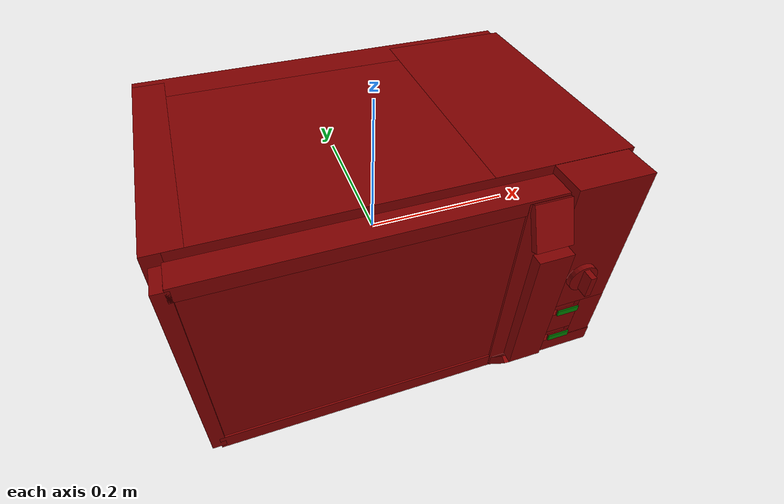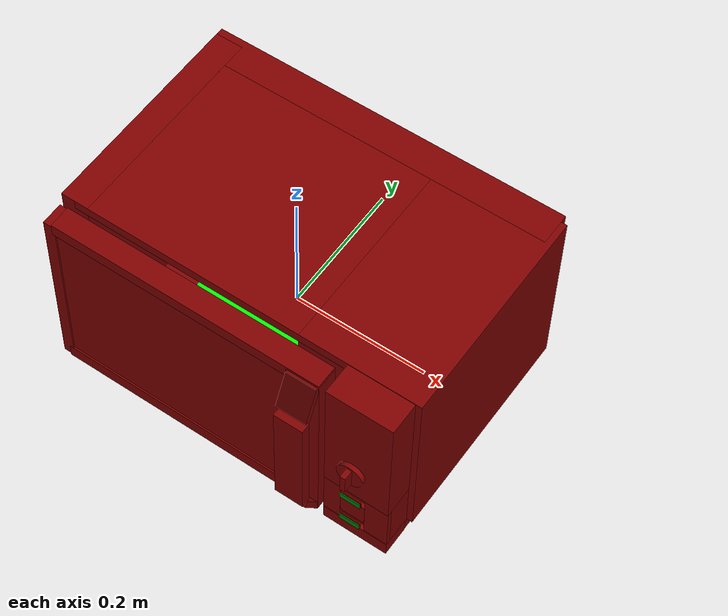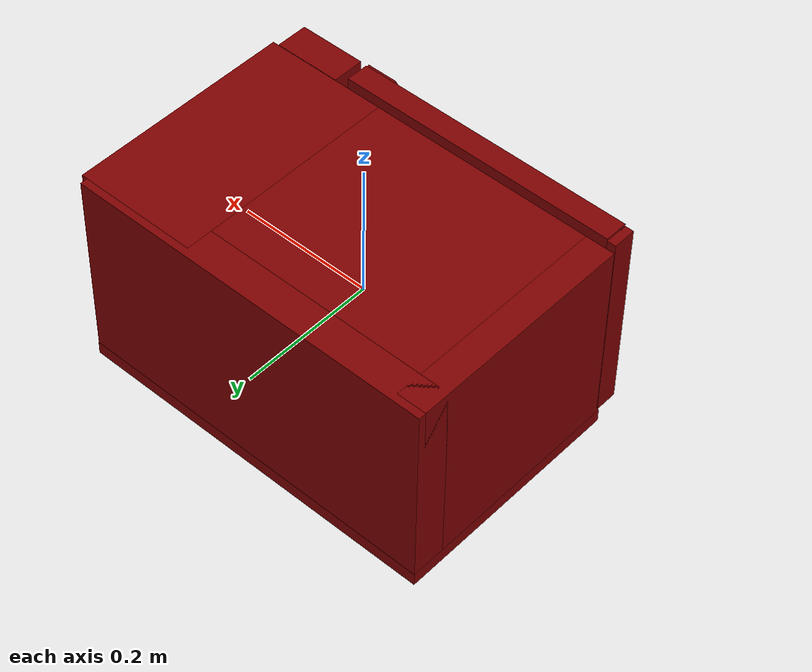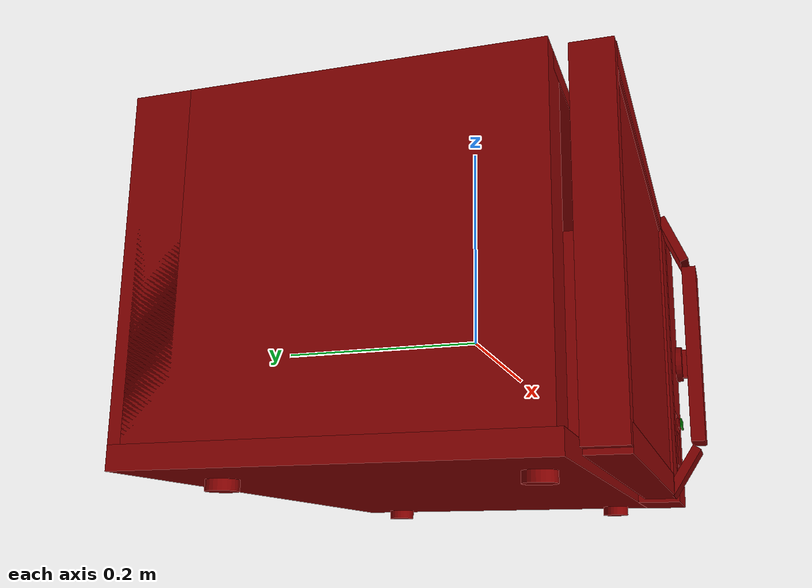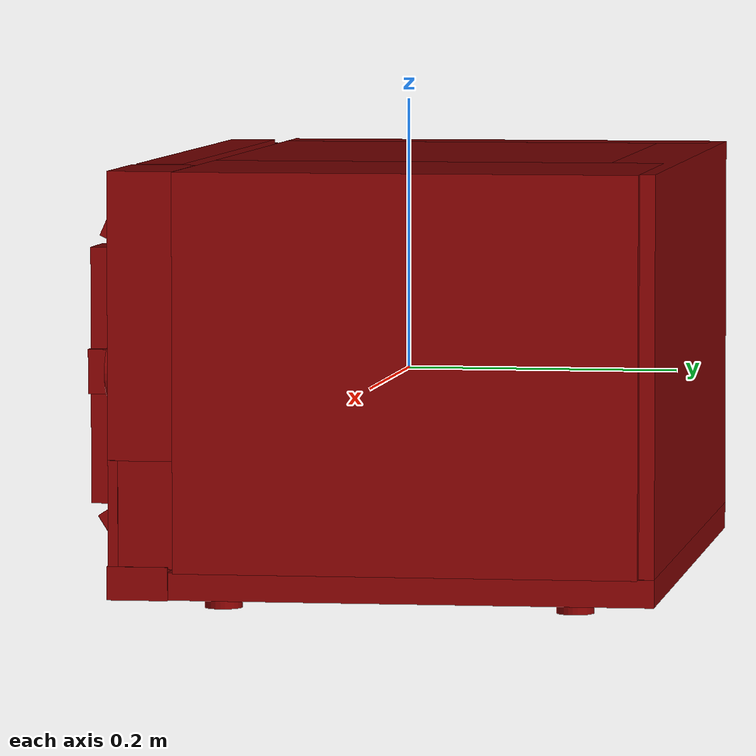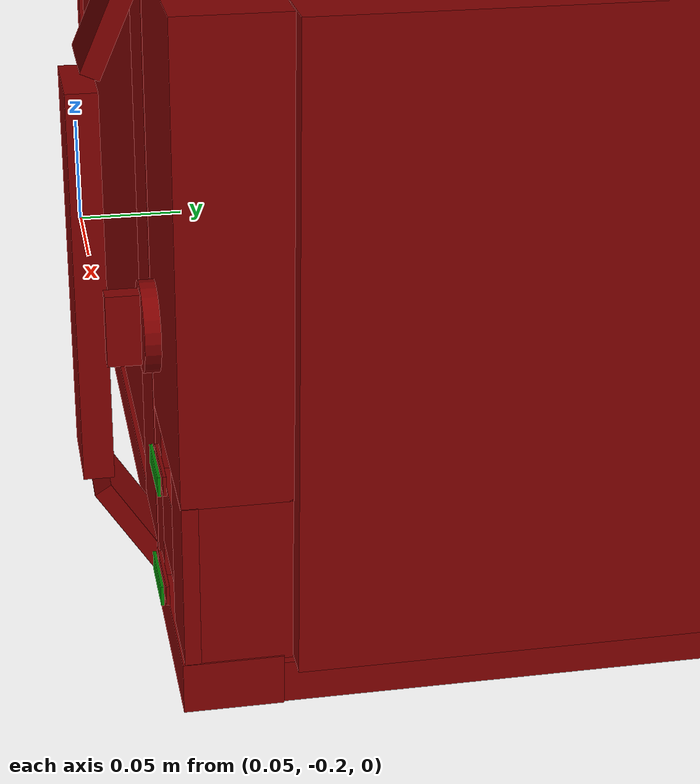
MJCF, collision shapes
<?xml version='1.0' encoding='UTF-8'?>
<mujoco model="model">
  <option timestep="0.002" gravity="0.0 0.0 -9.81"/>
  <compiler angle="radian"/>
  <asset>
    <mesh file="visuals/door.obj" name="door_vis"/>
    <mesh file="visuals/door_Clear.obj" name="door_Clear_vis"/>
    <mesh file="visuals/Body001.obj" name="Body001_vis"/>
    <mesh file="visuals/Button001.obj" name="Button001_vis"/>
    <mesh file="visuals/Button002.obj" name="Button002_vis"/>
    <mesh file="visuals/Disc001.obj" name="Disc001_vis"/>
    <mesh file="visuals/Knob001.obj" name="Knob001_vis"/>
    <texture file="visuals/T_BC001.png" name="Body001_material" type="2d"/>
    <material name="Body001_material" rgba="1 1 1 1.0" texture="Body001_material" shininess="0.4472135901451111" specular="1.5"/>
    <texture file="visuals/T_BC001.png" name="door_material" type="2d"/>
    <material name="door_material" rgba="1 1 1 1.0" texture="door_material" shininess="0.4472135901451111" specular="1"/>
    <material name="door_Clear_material" rgba="0.013285629451274872 0.013285629451274872 0.013285629451274872 0.800000011920929" shininess="0.5" specular="0.3103448502657381"/>
    <texture file="visuals/T_BC001.png" name="Button001_material" type="2d"/>
    <material name="Button001_material" rgba="1 1 1 1.0" texture="Button001_material" shininess="0.4472135901451111" specular="0.3103448502657381"/>
    <texture file="visuals/T_BC001.png" name="Button002_material" type="2d"/>
    <material name="Button002_material" rgba="1 1 1 1.0" texture="Button002_material" shininess="0.4472135901451111" specular="0.3103448502657381"/>
    <texture file="visuals/T_BC001.png" name="Disc001_material" type="2d"/>
    <material name="Disc001_material" rgba="1 1 1 1.0" texture="Disc001_material" shininess="0.4472135901451111" specular="2"/>
    <texture file="visuals/T_BC001.png" name="Knob001_material" type="2d"/>
    <material name="Knob001_material" rgba="1 1 1 1.0" texture="Knob001_material" shininess="0.4472135901451111" specular="0.3103448502657381"/>
  </asset>
  <default>
    <default class="visual">
      <geom conaffinity="0" contype="0" group="1" type="mesh"/>
    </default>
    <default class="collision">
      <geom group="0" rgba="0.5 0 0 0.5"/>
    </default>
    <default class="spawn">
      <geom group="0" rgba="1 1 1 0.5" contype="0" conaffinity="0"/>
      <site group="0" rgba="1 1 1 0.5"/>
    </default>
    <default class="region">
      <geom group="1" conaffinity="0" contype="0" rgba="0 1 0 0"/>
    </default>
  </default>
  <worldbody>
    <body>
      <body name="object">
        <geom class="collision" type="cylinder" pos="-0.06861492 0.02188147 -0.11794381" size="0.10732574760913849 0.001987940166145563" quat="1.0 0.0 0.0 0.0" name="tray" rgba="0 1 0 0.5"/>
        <geom class="collision" type="box" pos="0.21215780 -0.18236486 -0.05735222" size="0.015504326671361923 0.0007305588806048036 0.004741163458675146" quat="1.0 0.0 0.0 0.0" name="start_button" rgba="0.0 0.5 0 0.5"/>
        <geom class="collision" type="box" pos="0.21215780 -0.18236486 -0.11242075" size="0.015504326671361923 0.0007305590552277863 0.004741163458675146" quat="1.0 0.0 0.0 0.0" name="stop_button" rgba="0.0 0.5 0 0.5"/>
        <geom mesh="Body001_vis" type="mesh" solimp="0.998 0.998 0.001" solref="0.001 1" friction="0.95 0.3 0.1" class="visual" material="Body001_material"/>
        <geom class="collision" type="box" pos="-0.00409547 0.03809828 -0.13611026" size="0.2713785171508789 0.17297150194644928 0.009932599030435085" quat="1.0 0.0 0.0 0.0"/>
        <geom class="collision" type="box" pos="-0.00451770 0.18626766 0.01585611" size="0.27095627784729004 0.02480212226510048 0.14203383028507233" quat="1.0 0.0 0.0 0.0"/>
        <geom class="collision" type="box" pos="0.18527756 0.03505379 0.01585613" size="0.09019644558429718 0.16504107415676117 0.14203384518623352" quat="1.0 0.0 0.0 0.0"/>
        <geom class="collision" type="box" pos="-0.25440605 0.03505379 0.01585613" size="0.021067939698696136 0.16504111886024475 0.14203386008739471" quat="1.0 0.0 0.0 0.0"/>
        <geom class="collision" type="box" pos="-0.00108918 0.03505377 0.15052961" size="0.2536633312702179 0.1650412231683731 0.007353669498115778" quat="1.0 0.0 0.0 0.0"/>
        <geom class="collision" type="box" pos="0.21770282 -0.15419443 0.05530175" size="0.04913466051220894 0.023599378764629364 0.10258830338716507" quat="1.0 0.0 0.0 0.0"/>
        <geom class="collision" type="box" pos="0.21810303 -0.15668204 -0.13450684" size="0.049534764140844345 0.02185060642659664 0.011978304013609886" quat="1.0 0.0 0.0 0.0"/>
        <geom class="collision" type="box" pos="0.21770282 -0.15093648 -0.08507377" size="0.04913464933633804 0.01999371498823166 0.038842301815748215" quat="1.0 0.0 0.0 0.0"/>
        <geom class="collision" type="box" pos="0.21277909 -0.17409195 -0.08523798" size="0.018620220944285393 0.0035526875872164965 0.01874655857682228" quat="1.0 0.0 0.0 0.0"/>
        <geom class="collision" type="box" pos="0.18105124 -0.17409195 -0.08484384" size="0.01281884964555502 0.003552685957401991 0.03787265717983246" quat="1.0 0.0 0.0 0.0"/>
        <geom class="collision" type="box" pos="0.24943371 -0.17409195 -0.08484384" size="0.01789071224629879 0.0035526868887245655 0.03787266090512276" quat="1.0 0.0 0.0 0.0"/>
        <geom class="collision" type="cylinder" pos="0.20521106 -0.10535092 -0.15295930" size="0.013623032718896866 0.004595679696649313" quat="7.549790126404332e-08 1.0 -1.1102230246251565e-16 1.1102228922762585e-16"/>
        <geom class="collision" type="cylinder" pos="0.20521106 0.14845453 -0.15295930" size="0.013623032718896866 0.004595679696649313" quat="7.549790126404332e-08 1.0 -1.1102230246251565e-16 1.1102228922762585e-16"/>
        <geom class="collision" type="cylinder" pos="-0.21293943 -0.10535092 -0.15295930" size="0.013623032718896866 0.004595679696649313" quat="7.549790126404332e-08 1.0 -1.1102230246251565e-16 1.1102228922762585e-16"/>
        <geom class="collision" type="cylinder" pos="-0.21293943 0.14845453 -0.15295930" size="0.013623032718896866 0.004595679696649313" quat="7.549790126404332e-08 1.0 -1.1102230246251565e-16 1.1102228922762585e-16"/>
        <body name="door">
          <joint axis="0.0 0.0 1.0" pos="-0.25597878 -0.16004257 0.00636985" limited="true" name="microjoint" range="-1.5707963267948966 0.0" type="hinge" damping="1" frictionloss="1" armature=".01" stiffness="0.05"/>
          <geom mesh="door_vis" type="mesh" solimp="0.998 0.998 0.001" solref="0.001 1" friction="0.95 0.3 0.1" class="visual" material="door_material"/>
          <geom class="collision" type="box" pos="-0.07495992 -0.16216051 0.00523375" size="0.1838105469942093 0.011725434102118015 0.13223664462566376" quat="1.0 0.0 0.0 0.0"/>
          <geom class="collision" type="box" pos="-0.04818742 -0.16005306 0.14828830" size="0.20656633377075195 0.016895385459065437 0.009601777419447899" quat="1.0 0.0 0.0 0.0"/>
          <geom class="collision" type="box" pos="-0.25876563 -0.16005306 0.00779799" size="0.008643976412713528 0.016895374283194542 0.14690428972244263" quat="1.0 0.0 0.0 0.0"/>
          <geom class="collision" type="box" pos="-0.04904538 -0.16005306 -0.13270362" size="0.20755121111869812 0.01689537800848484 0.010778442956507206" quat="1.0 0.0 0.0 0.0"/>
          <geom class="collision" type="box" pos="0.13454227 -0.16045983 0.00779799" size="0.024687035009264946 0.01689538173377514 0.14690442383289337" quat="1.0 0.0 0.0 0.0"/>
          <geom class="collision" type="box" pos="0.13534896 -0.18841836 0.12931161" size="0.022969529032707214 0.0046080974861979485 0.02755904756486416" quat="0.9781920909881592 -0.20770232379436493 -4.611918042893069e-17 4.179028116301308e-24"/>
          <geom class="collision" type="box" pos="0.13510690 -0.18716353 -0.11872879" size="0.022969529032707214 0.0046080974861979485 0.02755904756486416" quat="0.27955159544944763 -0.9601306915283203 -2.13191840076803e-16 1.6583355063465588e-24"/>
          <geom class="collision" type="box" pos="0.13631721 -0.20347647 0.00424571" size="0.021779002621769905 0.007199854124337435 0.09310905635356903" quat="1.0 0.0 0.0 0.0" name="door_handle_main"/>
          <geom class="collision" type="box" pos="-0.05158485 -0.17113834 0.00892455" size="0.20391754806041718 0.0033617932349443436 0.14657965302467346" quat="1.0 0.0 0.0 0.0" name="door_main"/>
          <body name="door_Clear">
            <geom mesh="door_Clear_vis" type="mesh" solimp="0.998 0.998 0.001" solref="0.001 1" friction="0.95 0.3 0.1" class="visual" material="door_Clear_material"/>
            <geom class="collision" type="box" pos="-0.07495992 -0.16216051 0.00523375" size="0.1838105469942093 0.011725434102118015 0.13223664462566376" quat="1.0 0.0 0.0 0.0"/>
          </body>
        </body>
        <body name="Button001">
          <joint axis="0.0 1.0 0.0" pos="0.21215780 -0.18061098 -0.05735223" limited="true" name="Button001_joint" range="0.0 0.002" type="slide" damping="1" frictionloss="1" armature=".01" stiffness="0.05"/>
          <geom mesh="Button001_vis" type="mesh" solimp="0.998 0.998 0.001" solref="0.001 1" friction="0.95 0.3 0.1" class="visual" material="Button001_material"/>
          <geom class="collision" type="box" pos="0.21215780 -0.17995328 -0.05735222" size="0.015504326671361923 0.0007475823513232172 0.004741156008094549" quat="1.0 0.0 0.0 0.0"/>
        </body>
        <body name="Button002">
          <joint axis="0.0 1.0 0.0" pos="0.21215780 -0.18061098 -0.11242075" limited="true" name="Button002_joint" range="0.0 0.002" type="slide" damping="1" frictionloss="1" armature=".01" stiffness="0.05"/>
          <geom mesh="Button002_vis" type="mesh" solimp="0.998 0.998 0.001" solref="0.001 1" friction="0.95 0.3 0.1" class="visual" material="Button002_material"/>
          <geom class="collision" type="box" pos="0.21215780 -0.17995328 -0.11242075" size="0.015504326671361923 0.000747582467738539 0.004741156939417124" quat="1.0 0.0 0.0 0.0"/>
        </body>
        <body name="Disc001">
          <joint axis="0.0 0.0 1.0" pos="-0.06906780 0.02134192 -0.12338136" limited="false" name="Disc001_joint" range="0 360" type="hinge" damping="1" frictionloss="1" armature=".01" stiffness="0.05"/>
          <geom mesh="Disc001_vis" type="mesh" solimp="0.998 0.998 0.001" solref="0.001 1" friction="0.95 0.3 0.1" class="visual" material="Disc001_material"/>
          <geom class="collision" type="cylinder" pos="-0.06861492 0.02188147 -0.12284543" size="0.10642743855714798 0.002376622287556529" quat="1.0 0.0 0.0 0.0"/>
        </body>
        <body name="Knob001">
          <joint axis="0.0 1.0 0.0" pos="0.21215780 -0.18963091 0.01167002" limited="true" name="Knob001_joint" range="0.0 5.235987755982989" type="hinge" damping="0.05" armature="0.5" frictionloss="0.75"/>
          <geom mesh="Knob001_vis" type="mesh" solimp="0.998 0.998 0.001" solref="0.001 1" friction="0.95 0.3 0.1" class="visual" material="Knob001_material"/>
          <geom class="collision" type="cylinder" pos="0.21215780 -0.18333965 0.01167002" size="0.01973852328956127 0.0034485633950680494" quat="0.7071068286895752 0.7071067690849304 0.0 0.0" friction="100 0.5 0.01"/>
          <geom class="collision" type="box" pos="0.21215780 -0.19374358 0.01167002" size="0.004027633462101221 0.007678589783608913 0.015979072079062462" quat="1.0 0.0 0.0 0.0" friction="100 0.5 0.01"/>
        </body>
        <geom class="region" name="reg_int" type="box" pos="-0.068799975 0.010938489999999995 0.009887719999999996" size="0.158126325 0.14612455 0.12684359"/>
        <geom class="region" name="reg_main" type="box" pos="0.0 0.01626859 -8.999999999426134e-08" size="0.27647398 0.1958012 0.15889014"/>
      <geom class="region" name="reg_tray" type="cylinder" pos="-0.06861492 0.02188147 0.010387720083072781" size="0.10732574760913849 0.1253435899169272"/></body>
    </body>
  </worldbody>
  <actuator>
    <motor name="microjoint_actuator" joint="microjoint" gear="10"/>
    <motor name="Button001_joint_actuator" joint="Button001_joint" gear="0.5"/>
    <motor name="Button002_joint_actuator" joint="Button002_joint" gear="0.5"/>
    <motor name="Disc001_joint_actuator" joint="Disc001_joint" gear="10"/>
    <motor name="Knob001_joint_actuator" joint="Knob001_joint" gear="10"/>
  </actuator>
</mujoco>
